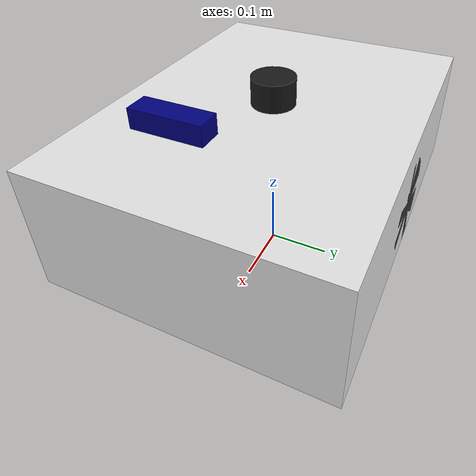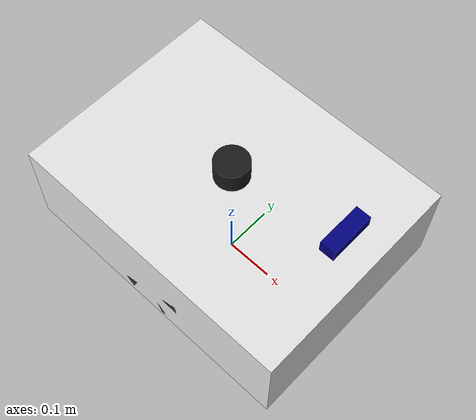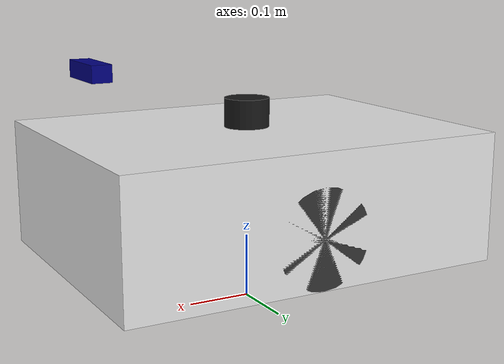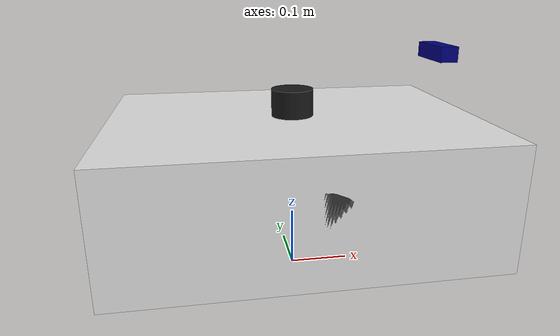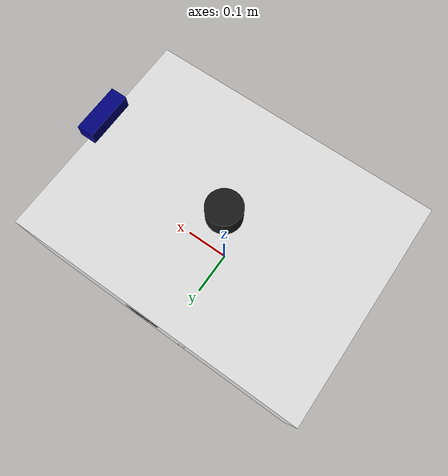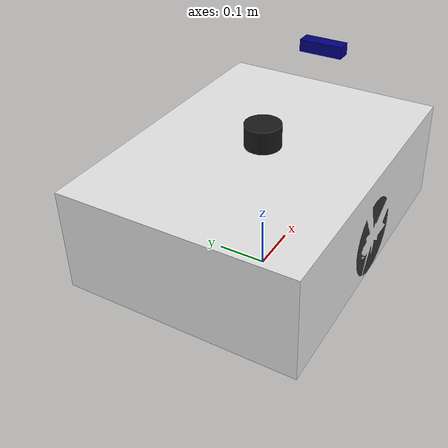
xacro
<?xml version="1.0"?>
<robot name="marvin" xmlns:xacro="http://www.ros.org/wiki/xacro">

  <!-- ================================================================
       Arguments
       ================================================================ -->
  <xacro:arg name="use_sim_time" default="false"/>
  <xacro:arg name="namespace"    default=""/>

  <!-- ================================================================
       Properties
       ================================================================ -->
  <xacro:property name="ns" value="$(arg namespace)"/>

  <!-- ================================================================
       Include sub-files
       ================================================================ -->
  <xacro:include filename="$(find marvin_description)/urdf/marvin_base.urdf.xacro"/>
  <xacro:include filename="$(find marvin_description)/urdf/sensors.urdf.xacro"/>

  <!-- ================================================================
       Instantiate macros
       ================================================================ -->
  <xacro:marvin_base namespace="${ns}"/>
  <xacro:marvin_sensors namespace="${ns}" parent_link="${ns}base_link"/>

</robot>

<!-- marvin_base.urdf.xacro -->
<!--
  marvin_base.urdf.xacro
  Kinematic and collision description of the Marvin mobile base.

  Macro
  =====
  marvin_base(namespace)
-->
<robot xmlns:xacro="http://www.ros.org/wiki/xacro">

  <!-- ================================================================
       Physical constants
       ================================================================ -->
  <xacro:property name="base_mass"   value="20.0"/>   <!-- kg  -->
  <xacro:property name="base_length" value="0.60"/>
  <xacro:property name="base_width"  value="0.45"/>
  <xacro:property name="base_height" value="0.20"/>

  <xacro:property name="wheel_mass"   value="1.5"/>
  <xacro:property name="wheel_radius" value="0.075"/>
  <xacro:property name="wheel_width"  value="0.050"/>
  <xacro:property name="wheel_sep"    value="0.40"/>  <!-- distance between wheel centres -->

  <xacro:property name="caster_radius" value="0.030"/>

  <!-- Convenience inertia macros -->
  <xacro:macro name="box_inertia" params="m x y z">
    <inertial>
      <mass value="${m}"/>
      <inertia
        ixx="${m*(y*y+z*z)/12}" ixy="0" ixz="0"
        iyy="${m*(x*x+z*z)/12}" iyz="0"
        izz="${m*(x*x+y*y)/12}"/>
    </inertial>
  </xacro:macro>

  <xacro:macro name="cylinder_inertia" params="m r h">
    <inertial>
      <mass value="${m}"/>
      <inertia
        ixx="${m*(3*r*r+h*h)/12}" ixy="0" ixz="0"
        iyy="${m*(3*r*r+h*h)/12}" iyz="0"
        izz="${m*r*r/2}"/>
    </inertial>
  </xacro:macro>

  <xacro:macro name="sphere_inertia" params="m r">
    <inertial>
      <mass value="${m}"/>
      <inertia
        ixx="${2*m*r*r/5}" ixy="0" ixz="0"
        iyy="${2*m*r*r/5}" iyz="0"
        izz="${2*m*r*r/5}"/>
    </inertial>
  </xacro:macro>

  <!-- ================================================================
       Wheel macro (left/right)
       ================================================================ -->
  <xacro:macro name="wheel" params="prefix side namespace reflect">
    <link name="${namespace}${prefix}_wheel_link">
      <visual>
        <origin xyz="0 0 0" rpy="${pi/2} 0 0"/>
        <geometry>
          <cylinder radius="${wheel_radius}" length="${wheel_width}"/>
        </geometry>
        <material name="dark_grey">
          <color rgba="0.2 0.2 0.2 1.0"/>
        </material>
      </visual>
      <collision>
        <origin xyz="0 0 0" rpy="${pi/2} 0 0"/>
        <geometry>
          <cylinder radius="${wheel_radius}" length="${wheel_width}"/>
        </geometry>
      </collision>
      <xacro:cylinder_inertia m="${wheel_mass}" r="${wheel_radius}" h="${wheel_width}"/>
    </link>

    <joint name="${namespace}${prefix}_wheel_joint" type="continuous">
      <parent link="${namespace}base_link"/>
      <child  link="${namespace}${prefix}_wheel_link"/>
      <origin xyz="0 ${reflect * wheel_sep / 2} ${wheel_radius}" rpy="0 0 0"/>
      <axis xyz="0 1 0"/>
      <dynamics damping="0.1" friction="0.1"/>
    </joint>
  </xacro:macro>

  <!-- ================================================================
       Caster macro
       ================================================================ -->
  <xacro:macro name="caster" params="prefix x_pos namespace">
    <link name="${namespace}${prefix}_caster_link">
      <visual>
        <geometry>
          <sphere radius="${caster_radius}"/>
        </geometry>
        <material name="light_grey">
          <color rgba="0.8 0.8 0.8 1.0"/>
        </material>
      </visual>
      <collision>
        <geometry>
          <sphere radius="${caster_radius}"/>
        </geometry>
      </collision>
      <xacro:sphere_inertia m="0.2" r="${caster_radius}"/>
    </link>

    <joint name="${namespace}${prefix}_caster_joint" type="fixed">
      <parent link="${namespace}base_link"/>
      <child  link="${namespace}${prefix}_caster_link"/>
      <origin xyz="${x_pos} 0 ${caster_radius}" rpy="0 0 0"/>
    </joint>
  </xacro:macro>

  <!-- ================================================================
       Main macro
       ================================================================ -->
  <xacro:macro name="marvin_base" params="namespace">

    <!-- base_footprint – zero-height projection on the ground -->
    <link name="${namespace}base_footprint"/>

    <joint name="${namespace}base_footprint_joint" type="fixed">
      <parent link="${namespace}base_footprint"/>
      <child  link="${namespace}base_link"/>
      <origin xyz="0 0 ${wheel_radius}" rpy="0 0 0"/>
    </joint>

    <!-- base_link – geometric centre of the chassis at wheel-axle height -->
    <link name="${namespace}base_link">
      <visual>
        <origin xyz="0 0 ${base_height/2}" rpy="0 0 0"/>
        <geometry>
          <box size="${base_length} ${base_width} ${base_height}"/>
        </geometry>
        <material name="white">
          <color rgba="0.9 0.9 0.9 1.0"/>
        </material>
      </visual>
      <collision>
        <origin xyz="0 0 ${base_height/2}" rpy="0 0 0"/>
        <geometry>
          <box size="${base_length} ${base_width} ${base_height}"/>
        </geometry>
      </collision>
      <xacro:box_inertia m="${base_mass}"
                         x="${base_length}"
                         y="${base_width}"
                         z="${base_height}"/>
    </link>

    <!-- Drive wheels -->
    <xacro:wheel prefix="left"  side="left"  namespace="${namespace}" reflect=" 1"/>
    <xacro:wheel prefix="right" side="right" namespace="${namespace}" reflect="-1"/>

    <!-- Passive casters -->
    <xacro:caster prefix="front" x_pos=" ${base_length/2 - caster_radius}" namespace="${namespace}"/>
    <xacro:caster prefix="rear"  x_pos="-${base_length/2 - caster_radius}" namespace="${namespace}"/>

  </xacro:macro>

</robot>

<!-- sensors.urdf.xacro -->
<robot xmlns:xacro="http://www.ros.org/wiki/xacro">

  <!-- ================================================================
       Properties
       ================================================================ -->
  <xacro:property name="lidar_height"  value="0.215"/> <!-- m above base_link origin -->
  <xacro:property name="camera_height" value="0.300"/>
  <xacro:property name="camera_x"      value="0.250"/>

  <!-- ================================================================
       Sensor macro
       ================================================================ -->
  <xacro:macro name="marvin_sensors" params="namespace parent_link">

    <!-- ── LiDAR ─────────────────────────────────────────────── -->
    <link name="${namespace}laser_frame">
      <visual>
        <origin xyz="0 0 0" rpy="0 0 0"/>
        <geometry>
          <cylinder radius="0.035" length="0.060"/>
        </geometry>
        <material name="black">
          <color rgba="0.1 0.1 0.1 1.0"/>
        </material>
      </visual>
      <collision>
        <origin xyz="0 0 0" rpy="0 0 0"/>
        <geometry>
          <cylinder radius="0.035" length="0.060"/>
        </geometry>
      </collision>
      <inertial>
        <mass value="0.18"/>
        <inertia ixx="0.0001" ixy="0" ixz="0"
                 iyy="0.0001" iyz="0"
                 izz="0.0001"/>
      </inertial>
    </link>

    <joint name="${namespace}laser_joint" type="fixed">
      <parent link="${parent_link}"/>
      <child  link="${namespace}laser_frame"/>
      <origin xyz="0.0 0.0 ${lidar_height}" rpy="0 0 0"/>
    </joint>

    <!-- ── RGB-D Camera ──────────────────────────────────────── -->
    <link name="${namespace}camera_link">
      <visual>
        <origin xyz="0 0 0" rpy="0 0 0"/>
        <geometry>
          <box size="0.030 0.090 0.025"/>
        </geometry>
        <material name="dark_blue">
          <color rgba="0.0 0.0 0.5 1.0"/>
        </material>
      </visual>
      <collision>
        <origin xyz="0 0 0" rpy="0 0 0"/>
        <geometry>
          <box size="0.030 0.090 0.025"/>
        </geometry>
      </collision>
      <inertial>
        <mass value="0.07"/>
        <inertia ixx="0.0001" ixy="0" ixz="0"
                 iyy="0.0001" iyz="0"
                 izz="0.0001"/>
      </inertial>
    </link>

    <joint name="${namespace}camera_joint" type="fixed">
      <parent link="${parent_link}"/>
      <child  link="${namespace}camera_link"/>
      <origin xyz="${camera_x} 0.0 ${camera_height}" rpy="0 0 0"/>
    </joint>

    <link name="${namespace}camera_optical_frame"/>

    <joint name="${namespace}camera_optical_joint" type="fixed">
      <parent link="${namespace}camera_link"/>
      <child  link="${namespace}camera_optical_frame"/>
      <origin xyz="0 0 0" rpy="${-pi/2} 0 ${-pi/2}"/>
    </joint>

    <!-- ── IMU ───────────────────────────────────────────────── -->
    <link name="${namespace}imu_link">
      <inertial>
        <mass value="0.02"/>
        <inertia ixx="0.00001" ixy="0" ixz="0"
                 iyy="0.00001" iyz="0"
                 izz="0.00001"/>
      </inertial>
    </link>

    <joint name="${namespace}imu_joint" type="fixed">
      <parent link="${parent_link}"/>
      <child  link="${namespace}imu_link"/>
      <origin xyz="0.0 0.0 0.10" rpy="0 0 0"/>
    </joint>

  </xacro:macro>

</robot>
